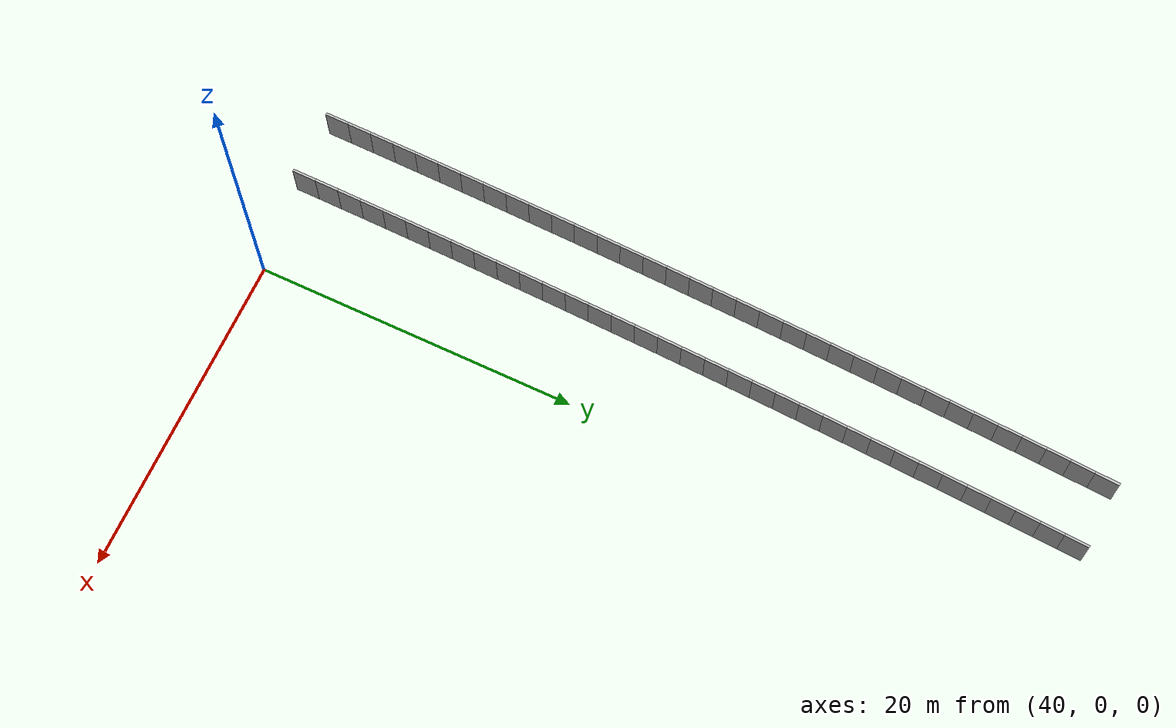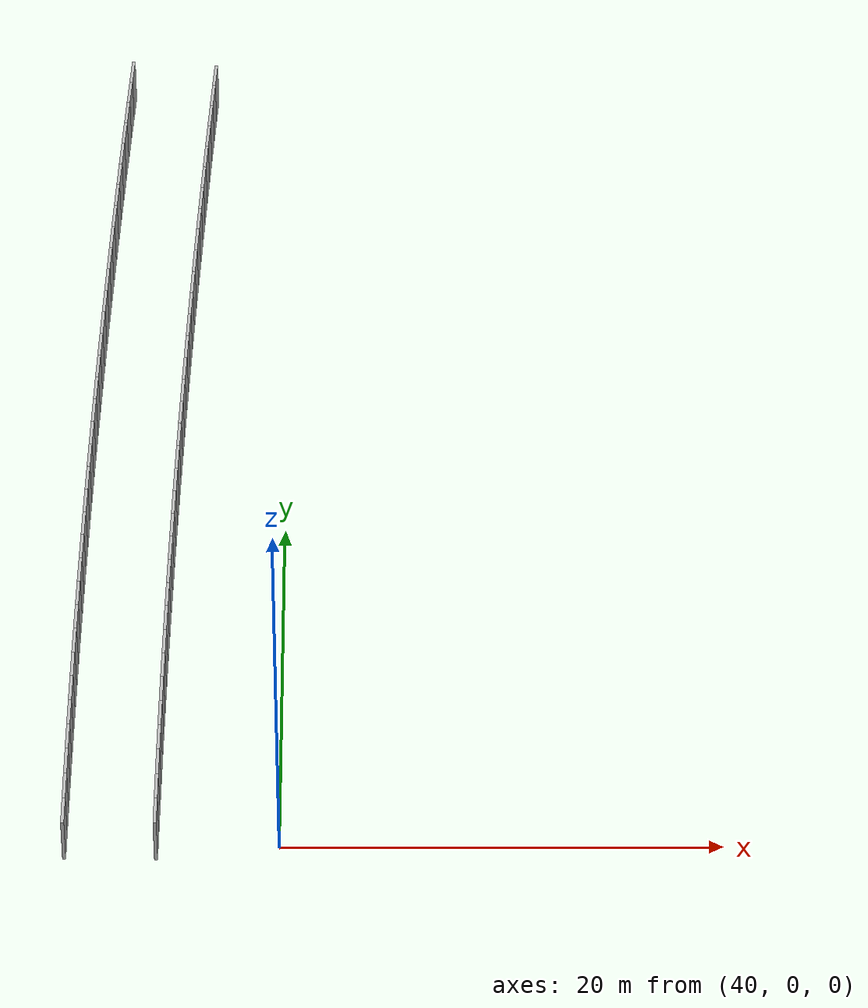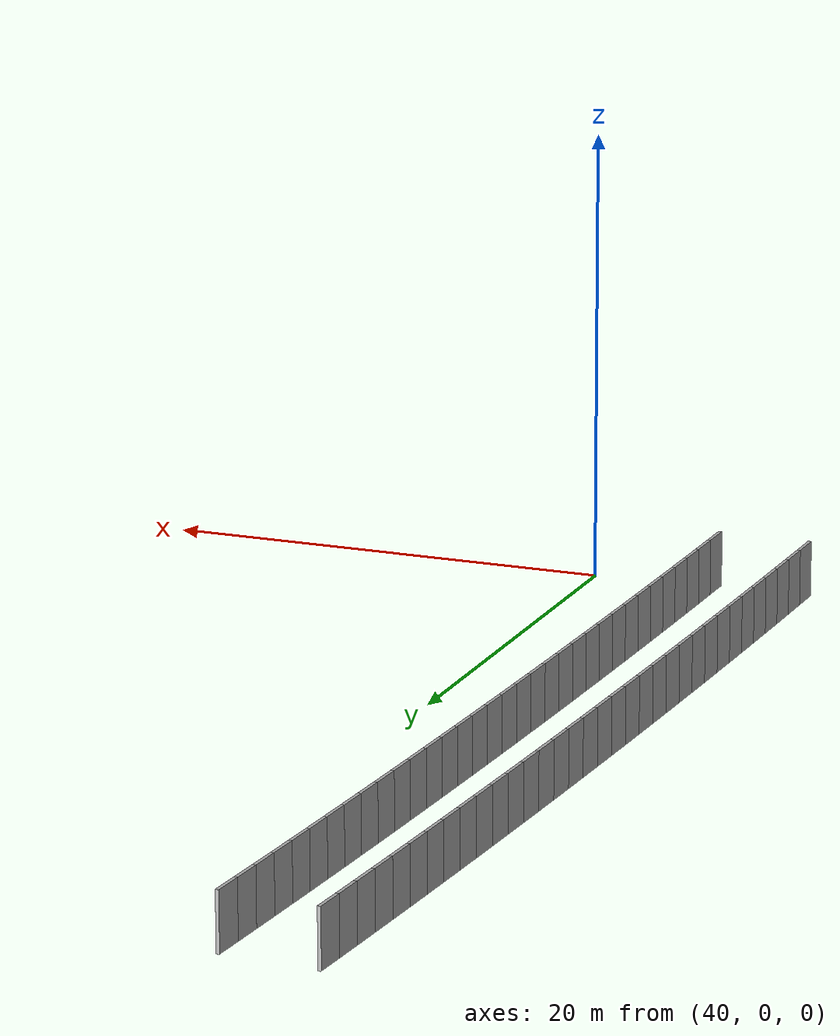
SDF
<?xml version="1.0" ?>
<sdf version="1.6">
  <model name="sps_0226">
    <pose frame="">0 0 0 0 -0 0</pose>
    <static>1</static>
    <self_collide>0</self_collide>
    <allow_auto_disable>0</allow_auto_disable>
    <link name="Wall5170">
      <kinematic>0</kinematic>
      <gravity>1</gravity>
      <self_collide>0</self_collide>
      <collision name="collision">
        <geometry>
          <box>
            <size>1.49648 0.15 2.5</size>
          </box>
        </geometry>
        <pose frame="">0 0 0 0 -0 0</pose>
      </collision>
      <visual name="visual">
        <geometry>
          <box>
            <size>1.49648 0.15 2.5</size>
          </box>
        </geometry>
        <pose frame="">0 0 0 0 -0 0</pose>
        <cast_shadows>1</cast_shadows>
        <transparency>0.0</transparency>
      </visual>
      <pose frame="">36.1128 49.4026 1.25 0 0 -1.63099</pose>
    </link>
    <link name="Wall5171">
      <kinematic>0</kinematic>
      <gravity>1</gravity>
      <self_collide>0</self_collide>
      <collision name="collision">
        <geometry>
          <box>
            <size>1.49657 0.15 2.5</size>
          </box>
        </geometry>
        <pose frame="">0 0 0 0 -0 0</pose>
      </collision>
      <visual name="visual">
        <geometry>
          <box>
            <size>1.49657 0.15 2.5</size>
          </box>
        </geometry>
        <pose frame="">0 0 0 0 -0 0</pose>
        <cast_shadows>1</cast_shadows>
        <transparency>0.0</transparency>
      </visual>
      <pose frame="">36.0241 47.9087 1.25 0 0 -1.62923</pose>
    </link>
    <link name="Wall5172">
      <kinematic>0</kinematic>
      <gravity>1</gravity>
      <self_collide>0</self_collide>
      <collision name="collision">
        <geometry>
          <box>
            <size>1.49643 0.15 2.5</size>
          </box>
        </geometry>
        <pose frame="">0 0 0 0 -0 0</pose>
      </collision>
      <visual name="visual">
        <geometry>
          <box>
            <size>1.49643 0.15 2.5</size>
          </box>
        </geometry>
        <pose frame="">0 0 0 0 -0 0</pose>
        <cast_shadows>1</cast_shadows>
        <transparency>0.0</transparency>
      </visual>
      <pose frame="">35.9379 46.4147 1.25 0 0 -1.6276</pose>
    </link>
    <link name="Wall5173">
      <kinematic>0</kinematic>
      <gravity>1</gravity>
      <self_collide>0</self_collide>
      <collision name="collision">
        <geometry>
          <box>
            <size>1.4965 0.15 2.5</size>
          </box>
        </geometry>
        <pose frame="">0 0 0 0 -0 0</pose>
      </collision>
      <visual name="visual">
        <geometry>
          <box>
            <size>1.4965 0.15 2.5</size>
          </box>
        </geometry>
        <pose frame="">0 0 0 0 -0 0</pose>
        <cast_shadows>1</cast_shadows>
        <transparency>0.0</transparency>
      </visual>
      <pose frame="">35.8541 44.9206 1.25 0 0 -1.62617</pose>
    </link>
    <link name="Wall5174">
      <kinematic>0</kinematic>
      <gravity>1</gravity>
      <self_collide>0</self_collide>
      <collision name="collision">
        <geometry>
          <box>
            <size>1.49672 0.15 2.5</size>
          </box>
        </geometry>
        <pose frame="">0 0 0 0 -0 0</pose>
      </collision>
      <visual name="visual">
        <geometry>
          <box>
            <size>1.49672 0.15 2.5</size>
          </box>
        </geometry>
        <pose frame="">0 0 0 0 -0 0</pose>
        <cast_shadows>1</cast_shadows>
        <transparency>0.0</transparency>
      </visual>
      <pose frame="">35.7725 43.4262 1.25 0 0 -1.62441</pose>
    </link>
    <link name="Wall5175">
      <kinematic>0</kinematic>
      <gravity>1</gravity>
      <self_collide>0</self_collide>
      <collision name="collision">
        <geometry>
          <box>
            <size>1.49648 0.15 2.5</size>
          </box>
        </geometry>
        <pose frame="">0 0 0 0 -0 0</pose>
      </collision>
      <visual name="visual">
        <geometry>
          <box>
            <size>1.49648 0.15 2.5</size>
          </box>
        </geometry>
        <pose frame="">0 0 0 0 -0 0</pose>
        <cast_shadows>1</cast_shadows>
        <transparency>0.0</transparency>
      </visual>
      <pose frame="">35.6934 41.9317 1.25 0 0 -1.62294</pose>
    </link>
    <link name="Wall5176">
      <kinematic>0</kinematic>
      <gravity>1</gravity>
      <self_collide>0</self_collide>
      <collision name="collision">
        <geometry>
          <box>
            <size>1.49648 0.15 2.5</size>
          </box>
        </geometry>
        <pose frame="">0 0 0 0 -0 0</pose>
      </collision>
      <visual name="visual">
        <geometry>
          <box>
            <size>1.49648 0.15 2.5</size>
          </box>
        </geometry>
        <pose frame="">0 0 0 0 -0 0</pose>
        <cast_shadows>1</cast_shadows>
        <transparency>0.0</transparency>
      </visual>
      <pose frame="">35.6167 40.4372 1.25 0 0 -1.62131</pose>
    </link>
    <link name="Wall5177">
      <kinematic>0</kinematic>
      <gravity>1</gravity>
      <self_collide>0</self_collide>
      <collision name="collision">
        <geometry>
          <box>
            <size>1.49642 0.15 2.5</size>
          </box>
        </geometry>
        <pose frame="">0 0 0 0 -0 0</pose>
      </collision>
      <visual name="visual">
        <geometry>
          <box>
            <size>1.49642 0.15 2.5</size>
          </box>
        </geometry>
        <pose frame="">0 0 0 0 -0 0</pose>
        <cast_shadows>1</cast_shadows>
        <transparency>0.0</transparency>
      </visual>
      <pose frame="">35.5423 38.9426 1.25 0 0 -1.61976</pose>
    </link>
    <link name="Wall5178">
      <kinematic>0</kinematic>
      <gravity>1</gravity>
      <self_collide>0</self_collide>
      <collision name="collision">
        <geometry>
          <box>
            <size>1.49644 0.15 2.5</size>
          </box>
        </geometry>
        <pose frame="">0 0 0 0 -0 0</pose>
      </collision>
      <visual name="visual">
        <geometry>
          <box>
            <size>1.49644 0.15 2.5</size>
          </box>
        </geometry>
        <pose frame="">0 0 0 0 -0 0</pose>
        <cast_shadows>1</cast_shadows>
        <transparency>0.0</transparency>
      </visual>
      <pose frame="">35.4701 37.4479 1.25 0 0 -1.61825</pose>
    </link>
    <link name="Wall5179">
      <kinematic>0</kinematic>
      <gravity>1</gravity>
      <self_collide>0</self_collide>
      <collision name="collision">
        <geometry>
          <box>
            <size>1.49656 0.15 2.5</size>
          </box>
        </geometry>
        <pose frame="">0 0 0 0 -0 0</pose>
      </collision>
      <visual name="visual">
        <geometry>
          <box>
            <size>1.49656 0.15 2.5</size>
          </box>
        </geometry>
        <pose frame="">0 0 0 0 -0 0</pose>
        <cast_shadows>1</cast_shadows>
        <transparency>0.0</transparency>
      </visual>
      <pose frame="">35.4004 35.953 1.25 0 0 -1.61653</pose>
    </link>
    <link name="Wall5180">
      <kinematic>0</kinematic>
      <gravity>1</gravity>
      <self_collide>0</self_collide>
      <collision name="collision">
        <geometry>
          <box>
            <size>1.4967 0.15 2.5</size>
          </box>
        </geometry>
        <pose frame="">0 0 0 0 -0 0</pose>
      </collision>
      <visual name="visual">
        <geometry>
          <box>
            <size>1.4967 0.15 2.5</size>
          </box>
        </geometry>
        <pose frame="">0 0 0 0 -0 0</pose>
        <cast_shadows>1</cast_shadows>
        <transparency>0.0</transparency>
      </visual>
      <pose frame="">35.3332 34.4579 1.25 0 0 -1.61502</pose>
    </link>
    <link name="Wall5181">
      <kinematic>0</kinematic>
      <gravity>1</gravity>
      <self_collide>0</self_collide>
      <collision name="collision">
        <geometry>
          <box>
            <size>1.49636 0.15 2.5</size>
          </box>
        </geometry>
        <pose frame="">0 0 0 0 -0 0</pose>
      </collision>
      <visual name="visual">
        <geometry>
          <box>
            <size>1.49636 0.15 2.5</size>
          </box>
        </geometry>
        <pose frame="">0 0 0 0 -0 0</pose>
        <cast_shadows>1</cast_shadows>
        <transparency>0.0</transparency>
      </visual>
      <pose frame="">35.2681 32.9628 1.25 0 0 -1.61347</pose>
    </link>
    <link name="Wall5182">
      <kinematic>0</kinematic>
      <gravity>1</gravity>
      <self_collide>0</self_collide>
      <collision name="collision">
        <geometry>
          <box>
            <size>1.49668 0.15 2.5</size>
          </box>
        </geometry>
        <pose frame="">0 0 0 0 -0 0</pose>
      </collision>
      <visual name="visual">
        <geometry>
          <box>
            <size>1.49668 0.15 2.5</size>
          </box>
        </geometry>
        <pose frame="">0 0 0 0 -0 0</pose>
        <cast_shadows>1</cast_shadows>
        <transparency>0.0</transparency>
      </visual>
      <pose frame="">35.2055 31.4676 1.25 0 0 -1.61183</pose>
    </link>
    <link name="Wall5183">
      <kinematic>0</kinematic>
      <gravity>1</gravity>
      <self_collide>0</self_collide>
      <collision name="collision">
        <geometry>
          <box>
            <size>1.49633 0.15 2.5</size>
          </box>
        </geometry>
        <pose frame="">0 0 0 0 -0 0</pose>
      </collision>
      <visual name="visual">
        <geometry>
          <box>
            <size>1.49633 0.15 2.5</size>
          </box>
        </geometry>
        <pose frame="">0 0 0 0 -0 0</pose>
        <cast_shadows>1</cast_shadows>
        <transparency>0.0</transparency>
      </visual>
      <pose frame="">35.1454 29.9723 1.25 0 0 -1.61009</pose>
    </link>
    <link name="Wall5184">
      <kinematic>0</kinematic>
      <gravity>1</gravity>
      <self_collide>0</self_collide>
      <collision name="collision">
        <geometry>
          <box>
            <size>1.49668 0.15 2.5</size>
          </box>
        </geometry>
        <pose frame="">0 0 0 0 -0 0</pose>
      </collision>
      <visual name="visual">
        <geometry>
          <box>
            <size>1.49668 0.15 2.5</size>
          </box>
        </geometry>
        <pose frame="">0 0 0 0 -0 0</pose>
        <cast_shadows>1</cast_shadows>
        <transparency>0.0</transparency>
      </visual>
      <pose frame="">35.0876 28.4769 1.25 0 0 -1.60877</pose>
    </link>
    <link name="Wall5185">
      <kinematic>0</kinematic>
      <gravity>1</gravity>
      <self_collide>0</self_collide>
      <collision name="collision">
        <geometry>
          <box>
            <size>1.49659 0.15 2.5</size>
          </box>
        </geometry>
        <pose frame="">0 0 0 0 -0 0</pose>
      </collision>
      <visual name="visual">
        <geometry>
          <box>
            <size>1.49659 0.15 2.5</size>
          </box>
        </geometry>
        <pose frame="">0 0 0 0 -0 0</pose>
        <cast_shadows>1</cast_shadows>
        <transparency>0.0</transparency>
      </visual>
      <pose frame="">35.0321 26.9813 1.25 0 0 -1.60702</pose>
    </link>
    <link name="Wall5186">
      <kinematic>0</kinematic>
      <gravity>1</gravity>
      <self_collide>0</self_collide>
      <collision name="collision">
        <geometry>
          <box>
            <size>1.4965 0.15 2.5</size>
          </box>
        </geometry>
        <pose frame="">0 0 0 0 -0 0</pose>
      </collision>
      <visual name="visual">
        <geometry>
          <box>
            <size>1.4965 0.15 2.5</size>
          </box>
        </geometry>
        <pose frame="">0 0 0 0 -0 0</pose>
        <cast_shadows>1</cast_shadows>
        <transparency>0.0</transparency>
      </visual>
      <pose frame="">34.9791 25.4857 1.25 0 0 -1.60539</pose>
    </link>
    <link name="Wall5187">
      <kinematic>0</kinematic>
      <gravity>1</gravity>
      <self_collide>0</self_collide>
      <collision name="collision">
        <geometry>
          <box>
            <size>1.49661 0.15 2.5</size>
          </box>
        </geometry>
        <pose frame="">0 0 0 0 -0 0</pose>
      </collision>
      <visual name="visual">
        <geometry>
          <box>
            <size>1.49661 0.15 2.5</size>
          </box>
        </geometry>
        <pose frame="">0 0 0 0 -0 0</pose>
        <cast_shadows>1</cast_shadows>
        <transparency>0.0</transparency>
      </visual>
      <pose frame="">34.9285 23.99 1.25 0 0 -1.60396</pose>
    </link>
    <link name="Wall5188">
      <kinematic>0</kinematic>
      <gravity>1</gravity>
      <self_collide>0</self_collide>
      <collision name="collision">
        <geometry>
          <box>
            <size>1.49635 0.15 2.5</size>
          </box>
        </geometry>
        <pose frame="">0 0 0 0 -0 0</pose>
      </collision>
      <visual name="visual">
        <geometry>
          <box>
            <size>1.49635 0.15 2.5</size>
          </box>
        </geometry>
        <pose frame="">0 0 0 0 -0 0</pose>
        <cast_shadows>1</cast_shadows>
        <transparency>0.0</transparency>
      </visual>
      <pose frame="">34.8801 22.4943 1.25 0 0 -1.60233</pose>
    </link>
    <link name="Wall5189">
      <kinematic>0</kinematic>
      <gravity>1</gravity>
      <self_collide>0</self_collide>
      <collision name="collision">
        <geometry>
          <box>
            <size>1.49646 0.15 2.5</size>
          </box>
        </geometry>
        <pose frame="">0 0 0 0 -0 0</pose>
      </collision>
      <visual name="visual">
        <geometry>
          <box>
            <size>1.49646 0.15 2.5</size>
          </box>
        </geometry>
        <pose frame="">0 0 0 0 -0 0</pose>
        <cast_shadows>1</cast_shadows>
        <transparency>0.0</transparency>
      </visual>
      <pose frame="">34.8341 20.9986 1.25 0 0 -1.60074</pose>
    </link>
    <link name="Wall5190">
      <kinematic>0</kinematic>
      <gravity>1</gravity>
      <self_collide>0</self_collide>
      <collision name="collision">
        <geometry>
          <box>
            <size>1.49639 0.15 2.5</size>
          </box>
        </geometry>
        <pose frame="">0 0 0 0 -0 0</pose>
      </collision>
      <visual name="visual">
        <geometry>
          <box>
            <size>1.49639 0.15 2.5</size>
          </box>
        </geometry>
        <pose frame="">0 0 0 0 -0 0</pose>
        <cast_shadows>1</cast_shadows>
        <transparency>0.0</transparency>
      </visual>
      <pose frame="">34.7905 19.5028 1.25 0 0 -1.59915</pose>
    </link>
    <link name="Wall5191">
      <kinematic>0</kinematic>
      <gravity>1</gravity>
      <self_collide>0</self_collide>
      <collision name="collision">
        <geometry>
          <box>
            <size>1.49657 0.15 2.5</size>
          </box>
        </geometry>
        <pose frame="">0 0 0 0 -0 0</pose>
      </collision>
      <visual name="visual">
        <geometry>
          <box>
            <size>1.49657 0.15 2.5</size>
          </box>
        </geometry>
        <pose frame="">0 0 0 0 -0 0</pose>
        <cast_shadows>1</cast_shadows>
        <transparency>0.0</transparency>
      </visual>
      <pose frame="">34.7493 18.0069 1.25 0 0 -1.59751</pose>
    </link>
    <link name="Wall5192">
      <kinematic>0</kinematic>
      <gravity>1</gravity>
      <self_collide>0</self_collide>
      <collision name="collision">
        <geometry>
          <box>
            <size>1.49663 0.15 2.5</size>
          </box>
        </geometry>
        <pose frame="">0 0 0 0 -0 0</pose>
      </collision>
      <visual name="visual">
        <geometry>
          <box>
            <size>1.49663 0.15 2.5</size>
          </box>
        </geometry>
        <pose frame="">0 0 0 0 -0 0</pose>
        <cast_shadows>1</cast_shadows>
        <transparency>0.0</transparency>
      </visual>
      <pose frame="">34.7105 16.5108 1.25 0 0 -1.59592</pose>
    </link>
    <link name="Wall5193">
      <kinematic>0</kinematic>
      <gravity>1</gravity>
      <self_collide>0</self_collide>
      <collision name="collision">
        <geometry>
          <box>
            <size>1.49645 0.15 2.5</size>
          </box>
        </geometry>
        <pose frame="">0 0 0 0 -0 0</pose>
      </collision>
      <visual name="visual">
        <geometry>
          <box>
            <size>1.49645 0.15 2.5</size>
          </box>
        </geometry>
        <pose frame="">0 0 0 0 -0 0</pose>
        <cast_shadows>1</cast_shadows>
        <transparency>0.0</transparency>
      </visual>
      <pose frame="">34.674 15.0147 1.25 0 0 -1.59445</pose>
    </link>
    <link name="Wall5194">
      <kinematic>0</kinematic>
      <gravity>1</gravity>
      <self_collide>0</self_collide>
      <collision name="collision">
        <geometry>
          <box>
            <size>1.49652 0.15 2.5</size>
          </box>
        </geometry>
        <pose frame="">0 0 0 0 -0 0</pose>
      </collision>
      <visual name="visual">
        <geometry>
          <box>
            <size>1.49652 0.15 2.5</size>
          </box>
        </geometry>
        <pose frame="">0 0 0 0 -0 0</pose>
        <cast_shadows>1</cast_shadows>
        <transparency>0.0</transparency>
      </visual>
      <pose frame="">34.6399 13.5186 1.25 0 0 -1.59274</pose>
    </link>
    <link name="Wall5195">
      <kinematic>0</kinematic>
      <gravity>1</gravity>
      <self_collide>0</self_collide>
      <collision name="collision">
        <geometry>
          <box>
            <size>1.49671 0.15 2.5</size>
          </box>
        </geometry>
        <pose frame="">0 0 0 0 -0 0</pose>
      </collision>
      <visual name="visual">
        <geometry>
          <box>
            <size>1.49671 0.15 2.5</size>
          </box>
        </geometry>
        <pose frame="">0 0 0 0 -0 0</pose>
        <cast_shadows>1</cast_shadows>
        <transparency>0.0</transparency>
      </visual>
      <pose frame="">34.6081 12.0223 1.25 0 0 -1.59123</pose>
    </link>
    <link name="Wall5196">
      <kinematic>0</kinematic>
      <gravity>1</gravity>
      <self_collide>0</self_collide>
      <collision name="collision">
        <geometry>
          <box>
            <size>1.49648 0.15 2.5</size>
          </box>
        </geometry>
        <pose frame="">0 0 0 0 -0 0</pose>
      </collision>
      <visual name="visual">
        <geometry>
          <box>
            <size>1.49648 0.15 2.5</size>
          </box>
        </geometry>
        <pose frame="">0 0 0 0 -0 0</pose>
        <cast_shadows>1</cast_shadows>
        <transparency>0.0</transparency>
      </visual>
      <pose frame="">34.5788 10.526 1.25 0 0 -1.58964</pose>
    </link>
    <link name="Wall5197">
      <kinematic>0</kinematic>
      <gravity>1</gravity>
      <self_collide>0</self_collide>
      <collision name="collision">
        <geometry>
          <box>
            <size>1.49644 0.15 2.5</size>
          </box>
        </geometry>
        <pose frame="">0 0 0 0 -0 0</pose>
      </collision>
      <visual name="visual">
        <geometry>
          <box>
            <size>1.49644 0.15 2.5</size>
          </box>
        </geometry>
        <pose frame="">0 0 0 0 -0 0</pose>
        <cast_shadows>1</cast_shadows>
        <transparency>0.0</transparency>
      </visual>
      <pose frame="">34.5517 9.0298 1.25 0 0 -1.58805</pose>
    </link>
    <link name="Wall5198">
      <kinematic>0</kinematic>
      <gravity>1</gravity>
      <self_collide>0</self_collide>
      <collision name="collision">
        <geometry>
          <box>
            <size>1.49658 0.15 2.5</size>
          </box>
        </geometry>
        <pose frame="">0 0 0 0 -0 0</pose>
      </collision>
      <visual name="visual">
        <geometry>
          <box>
            <size>1.49658 0.15 2.5</size>
          </box>
        </geometry>
        <pose frame="">0 0 0 0 -0 0</pose>
        <cast_shadows>1</cast_shadows>
        <transparency>0.0</transparency>
      </visual>
      <pose frame="">34.5271 7.53349 1.25 0 0 -1.58654</pose>
    </link>
    <link name="Wall5199">
      <kinematic>0</kinematic>
      <gravity>1</gravity>
      <self_collide>0</self_collide>
      <collision name="collision">
        <geometry>
          <box>
            <size>1.49655 0.15 2.5</size>
          </box>
        </geometry>
        <pose frame="">0 0 0 0 -0 0</pose>
      </collision>
      <visual name="visual">
        <geometry>
          <box>
            <size>1.49655 0.15 2.5</size>
          </box>
        </geometry>
        <pose frame="">0 0 0 0 -0 0</pose>
        <cast_shadows>1</cast_shadows>
        <transparency>0.0</transparency>
      </visual>
      <pose frame="">34.5048 6.03709 1.25 0 0 -1.58483</pose>
    </link>
    <link name="Wall5200">
      <kinematic>0</kinematic>
      <gravity>1</gravity>
      <self_collide>0</self_collide>
      <collision name="collision">
        <geometry>
          <box>
            <size>1.49652 0.15 2.5</size>
          </box>
        </geometry>
        <pose frame="">0 0 0 0 -0 0</pose>
      </collision>
      <visual name="visual">
        <geometry>
          <box>
            <size>1.49652 0.15 2.5</size>
          </box>
        </geometry>
        <pose frame="">0 0 0 0 -0 0</pose>
        <cast_shadows>1</cast_shadows>
        <transparency>0.0</transparency>
      </visual>
      <pose frame="">34.4849 4.54069 1.25 0 0 -1.58336</pose>
    </link>
    <link name="Wall5201">
      <kinematic>0</kinematic>
      <gravity>1</gravity>
      <self_collide>0</self_collide>
      <collision name="collision">
        <geometry>
          <box>
            <size>1.49649 0.15 2.5</size>
          </box>
        </geometry>
        <pose frame="">0 0 0 0 -0 0</pose>
      </collision>
      <visual name="visual">
        <geometry>
          <box>
            <size>1.49649 0.15 2.5</size>
          </box>
        </geometry>
        <pose frame="">0 0 0 0 -0 0</pose>
        <cast_shadows>1</cast_shadows>
        <transparency>0.0</transparency>
      </visual>
      <pose frame="">34.4673 3.0443 1.25 0 0 -1.58177</pose>
    </link>
    <link name="Wall5202">
      <kinematic>0</kinematic>
      <gravity>1</gravity>
      <self_collide>0</self_collide>
      <collision name="collision">
        <geometry>
          <box>
            <size>1.49646 0.15 2.5</size>
          </box>
        </geometry>
        <pose frame="">0 0 0 0 -0 0</pose>
      </collision>
      <visual name="visual">
        <geometry>
          <box>
            <size>1.49646 0.15 2.5</size>
          </box>
        </geometry>
        <pose frame="">0 0 0 0 -0 0</pose>
        <cast_shadows>1</cast_shadows>
        <transparency>0.0</transparency>
      </visual>
      <pose frame="">34.452 1.5479 1.25 0 0 -1.58018</pose>
    </link>
    <link name="Wall5203">
      <kinematic>0</kinematic>
      <gravity>1</gravity>
      <self_collide>0</self_collide>
      <collision name="collision">
        <geometry>
          <box>
            <size>1.49663 0.15 2.5</size>
          </box>
        </geometry>
        <pose frame="">0 0 0 0 -0 0</pose>
      </collision>
      <visual name="visual">
        <geometry>
          <box>
            <size>1.49663 0.15 2.5</size>
          </box>
        </geometry>
        <pose frame="">0 0 0 0 -0 0</pose>
        <cast_shadows>1</cast_shadows>
        <transparency>0.0</transparency>
      </visual>
      <pose frame="">34.4392 0.0514058 1.25 0 0 -1.57854</pose>
    </link>
    <link name="Wall6966">
      <kinematic>0</kinematic>
      <gravity>1</gravity>
      <self_collide>0</self_collide>
      <collision name="collision">
        <geometry>
          <box>
            <size>1.50289 0.15 2.5</size>
          </box>
        </geometry>
        <pose frame="">0 0 0 0 -0 0</pose>
      </collision>
      <visual name="visual">
        <geometry>
          <box>
            <size>1.50289 0.15 2.5</size>
          </box>
        </geometry>
        <pose frame="">0 0 0 0 -0 0</pose>
        <cast_shadows>1</cast_shadows>
        <transparency>0.0</transparency>
      </visual>
      <pose frame="">31.981 49.651 1.25 0 0 -1.63086</pose>
    </link>
    <link name="Wall6967">
      <kinematic>0</kinematic>
      <gravity>1</gravity>
      <self_collide>0</self_collide>
      <collision name="collision">
        <geometry>
          <box>
            <size>1.50318 0.15 2.5</size>
          </box>
        </geometry>
        <pose frame="">0 0 0 0 -0 0</pose>
      </collision>
      <visual name="visual">
        <geometry>
          <box>
            <size>1.50318 0.15 2.5</size>
          </box>
        </geometry>
        <pose frame="">0 0 0 0 -0 0</pose>
        <cast_shadows>1</cast_shadows>
        <transparency>0.0</transparency>
      </visual>
      <pose frame="">31.892 48.1506 1.25 0 0 -1.62926</pose>
    </link>
    <link name="Wall6968">
      <kinematic>0</kinematic>
      <gravity>1</gravity>
      <self_collide>0</self_collide>
      <collision name="collision">
        <geometry>
          <box>
            <size>1.50322 0.15 2.5</size>
          </box>
        </geometry>
        <pose frame="">0 0 0 0 -0 0</pose>
      </collision>
      <visual name="visual">
        <geometry>
          <box>
            <size>1.50322 0.15 2.5</size>
          </box>
        </geometry>
        <pose frame="">0 0 0 0 -0 0</pose>
        <cast_shadows>1</cast_shadows>
        <transparency>0.0</transparency>
      </visual>
      <pose frame="">31.8054 46.6499 1.25 0 0 -1.62763</pose>
    </link>
    <link name="Wall6969">
      <kinematic>0</kinematic>
      <gravity>1</gravity>
      <self_collide>0</self_collide>
      <collision name="collision">
        <geometry>
          <box>
            <size>1.5031 0.15 2.5</size>
          </box>
        </geometry>
        <pose frame="">0 0 0 0 -0 0</pose>
      </collision>
      <visual name="visual">
        <geometry>
          <box>
            <size>1.5031 0.15 2.5</size>
          </box>
        </geometry>
        <pose frame="">0 0 0 0 -0 0</pose>
        <cast_shadows>1</cast_shadows>
        <transparency>0.0</transparency>
      </visual>
      <pose frame="">31.7211 45.1491 1.25 0 0 -1.62617</pose>
    </link>
    <link name="Wall6970">
      <kinematic>0</kinematic>
      <gravity>1</gravity>
      <self_collide>0</self_collide>
      <collision name="collision">
        <geometry>
          <box>
            <size>1.50296 0.15 2.5</size>
          </box>
        </geometry>
        <pose frame="">0 0 0 0 -0 0</pose>
      </collision>
      <visual name="visual">
        <geometry>
          <box>
            <size>1.50296 0.15 2.5</size>
          </box>
        </geometry>
        <pose frame="">0 0 0 0 -0 0</pose>
        <cast_shadows>1</cast_shadows>
        <transparency>0.0</transparency>
      </visual>
      <pose frame="">31.6392 43.6483 1.25 0 0 -1.62447</pose>
    </link>
    <link name="Wall6971">
      <kinematic>0</kinematic>
      <gravity>1</gravity>
      <self_collide>0</self_collide>
      <collision name="collision">
        <geometry>
          <box>
            <size>1.50326 0.15 2.5</size>
          </box>
        </geometry>
        <pose frame="">0 0 0 0 -0 0</pose>
      </collision>
      <visual name="visual">
        <geometry>
          <box>
            <size>1.50326 0.15 2.5</size>
          </box>
        </geometry>
        <pose frame="">0 0 0 0 -0 0</pose>
        <cast_shadows>1</cast_shadows>
        <transparency>0.0</transparency>
      </visual>
      <pose frame="">31.5597 42.1473 1.25 0 0 -1.62283</pose>
    </link>
    <link name="Wall6972">
      <kinematic>0</kinematic>
      <gravity>1</gravity>
      <self_collide>0</self_collide>
      <collision name="collision">
        <geometry>
          <box>
            <size>1.5029 0.15 2.5</size>
          </box>
        </geometry>
        <pose frame="">0 0 0 0 -0 0</pose>
      </collision>
      <visual name="visual">
        <geometry>
          <box>
            <size>1.5029 0.15 2.5</size>
          </box>
        </geometry>
        <pose frame="">0 0 0 0 -0 0</pose>
        <cast_shadows>1</cast_shadows>
        <transparency>0.0</transparency>
      </visual>
      <pose frame="">31.4827 40.6462 1.25 0 0 -1.62138</pose>
    </link>
    <link name="Wall6973">
      <kinematic>0</kinematic>
      <gravity>1</gravity>
      <self_collide>0</self_collide>
      <collision name="collision">
        <geometry>
          <box>
            <size>1.50302 0.15 2.5</size>
          </box>
        </geometry>
        <pose frame="">0 0 0 0 -0 0</pose>
      </collision>
      <visual name="visual">
        <geometry>
          <box>
            <size>1.50302 0.15 2.5</size>
          </box>
        </geometry>
        <pose frame="">0 0 0 0 -0 0</pose>
        <cast_shadows>1</cast_shadows>
        <transparency>0.0</transparency>
      </visual>
      <pose frame="">31.408 39.1451 1.25 0 0 -1.61967</pose>
    </link>
    <link name="Wall6974">
      <kinematic>0</kinematic>
      <gravity>1</gravity>
      <self_collide>0</self_collide>
      <collision name="collision">
        <geometry>
          <box>
            <size>1.50309 0.15 2.5</size>
          </box>
        </geometry>
        <pose frame="">0 0 0 0 -0 0</pose>
      </collision>
      <visual name="visual">
        <geometry>
          <box>
            <size>1.50309 0.15 2.5</size>
          </box>
        </geometry>
        <pose frame="">0 0 0 0 -0 0</pose>
        <cast_shadows>1</cast_shadows>
        <transparency>0.0</transparency>
      </visual>
      <pose frame="">31.3357 37.6438 1.25 0 0 -1.61816</pose>
    </link>
    <link name="Wall6975">
      <kinematic>0</kinematic>
      <gravity>1</gravity>
      <self_collide>0</self_collide>
      <collision name="collision">
        <geometry>
          <box>
            <size>1.50316 0.15 2.5</size>
          </box>
        </geometry>
        <pose frame="">0 0 0 0 -0 0</pose>
      </collision>
      <visual name="visual">
        <geometry>
          <box>
            <size>1.50316 0.15 2.5</size>
          </box>
        </geometry>
        <pose frame="">0 0 0 0 -0 0</pose>
        <cast_shadows>1</cast_shadows>
        <transparency>0.0</transparency>
      </visual>
      <pose frame="">31.2657 36.1423 1.25 0 0 -1.61657</pose>
    </link>
    <link name="Wall6976">
      <kinematic>0</kinematic>
      <gravity>1</gravity>
      <self_collide>0</self_collide>
      <collision name="collision">
        <geometry>
          <box>
            <size>1.50305 0.15 2.5</size>
          </box>
        </geometry>
        <pose frame="">0 0 0 0 -0 0</pose>
      </collision>
      <visual name="visual">
        <geometry>
          <box>
            <size>1.50305 0.15 2.5</size>
          </box>
        </geometry>
        <pose frame="">0 0 0 0 -0 0</pose>
        <cast_shadows>1</cast_shadows>
        <transparency>0.0</transparency>
      </visual>
      <pose frame="">31.1981 34.6407 1.25 0 0 -1.61499</pose>
    </link>
    <link name="Wall6977">
      <kinematic>0</kinematic>
      <gravity>1</gravity>
      <self_collide>0</self_collide>
      <collision name="collision">
        <geometry>
          <box>
            <size>1.5032 0.15 2.5</size>
          </box>
        </geometry>
        <pose frame="">0 0 0 0 -0 0</pose>
      </collision>
      <visual name="visual">
        <geometry>
          <box>
            <size>1.5032 0.15 2.5</size>
          </box>
        </geometry>
        <pose frame="">0 0 0 0 -0 0</pose>
        <cast_shadows>1</cast_shadows>
        <transparency>0.0</transparency>
      </visual>
      <pose frame="">31.1329 33.139 1.25 0 0 -1.6134</pose>
    </link>
    <link name="Wall6978">
      <kinematic>0</kinematic>
      <gravity>1</gravity>
      <self_collide>0</self_collide>
      <collision name="collision">
        <geometry>
          <box>
            <size>1.50304 0.15 2.5</size>
          </box>
        </geometry>
        <pose frame="">0 0 0 0 -0 0</pose>
      </collision>
      <visual name="visual">
        <geometry>
          <box>
            <size>1.50304 0.15 2.5</size>
          </box>
        </geometry>
        <pose frame="">0 0 0 0 -0 0</pose>
        <cast_shadows>1</cast_shadows>
        <transparency>0.0</transparency>
      </visual>
      <pose frame="">31.07 31.6372 1.25 0 0 -1.6119</pose>
    </link>
    <link name="Wall6979">
      <kinematic>0</kinematic>
      <gravity>1</gravity>
      <self_collide>0</self_collide>
      <collision name="collision">
        <geometry>
          <box>
            <size>1.503 0.15 2.5</size>
          </box>
        </geometry>
        <pose frame="">0 0 0 0 -0 0</pose>
      </collision>
      <visual name="visual">
        <geometry>
          <box>
            <size>1.503 0.15 2.5</size>
          </box>
        </geometry>
        <pose frame="">0 0 0 0 -0 0</pose>
        <cast_shadows>1</cast_shadows>
        <transparency>0.0</transparency>
      </visual>
      <pose frame="">31.0095 30.1354 1.25 0 0 -1.6102</pose>
    </link>
    <link name="Wall6980">
      <kinematic>0</kinematic>
      <gravity>1</gravity>
      <self_collide>0</self_collide>
      <collision name="collision">
        <geometry>
          <box>
            <size>1.50328 0.15 2.5</size>
          </box>
        </geometry>
        <pose frame="">0 0 0 0 -0 0</pose>
      </collision>
      <visual name="visual">
        <geometry>
          <box>
            <size>1.50328 0.15 2.5</size>
          </box>
        </geometry>
        <pose frame="">0 0 0 0 -0 0</pose>
        <cast_shadows>1</cast_shadows>
        <transparency>0.0</transparency>
      </visual>
      <pose frame="">30.9514 28.6334 1.25 0 0 -1.60873</pose>
    </link>
    <link name="Wall6981">
      <kinematic>0</kinematic>
      <gravity>1</gravity>
      <self_collide>0</self_collide>
      <collision name="collision">
        <geometry>
          <box>
            <size>1.503 0.15 2.5</size>
          </box>
        </geometry>
        <pose frame="">0 0 0 0 -0 0</pose>
      </collision>
      <visual name="visual">
        <geometry>
          <box>
            <size>1.503 0.15 2.5</size>
          </box>
        </geometry>
        <pose frame="">0 0 0 0 -0 0</pose>
        <cast_shadows>1</cast_shadows>
        <transparency>0.0</transparency>
      </visual>
      <pose frame="">30.8957 27.1313 1.25 0 0 -1.60703</pose>
    </link>
    <link name="Wall6982">
      <kinematic>0</kinematic>
      <gravity>1</gravity>
      <self_collide>0</self_collide>
      <collision name="collision">
        <geometry>
          <box>
            <size>1.5031 0.15 2.5</size>
          </box>
        </geometry>
        <pose frame="">0 0 0 0 -0 0</pose>
      </collision>
      <visual name="visual">
        <geometry>
          <box>
            <size>1.5031 0.15 2.5</size>
          </box>
        </geometry>
        <pose frame="">0 0 0 0 -0 0</pose>
        <cast_shadows>1</cast_shadows>
        <transparency>0.0</transparency>
      </visual>
      <pose frame="">30.8423 25.6292 1.25 0 0 -1.60552</pose>
    </link>
    <link name="Wall6983">
      <kinematic>0</kinematic>
      <gravity>1</gravity>
      <self_collide>0</self_collide>
      <collision name="collision">
        <geometry>
          <box>
            <size>1.50302 0.15 2.5</size>
          </box>
        </geometry>
        <pose frame="">0 0 0 0 -0 0</pose>
      </collision>
      <visual name="visual">
        <geometry>
          <box>
            <size>1.50302 0.15 2.5</size>
          </box>
        </geometry>
        <pose frame="">0 0 0 0 -0 0</pose>
        <cast_shadows>1</cast_shadows>
        <transparency>0.0</transparency>
      </visual>
      <pose frame="">30.7913 24.127 1.25 0 0 -1.60394</pose>
    </link>
    <link name="Wall6984">
      <kinematic>0</kinematic>
      <gravity>1</gravity>
      <self_collide>0</self_collide>
      <collision name="collision">
        <geometry>
          <box>
            <size>1.50294 0.15 2.5</size>
          </box>
        </geometry>
        <pose frame="">0 0 0 0 -0 0</pose>
      </collision>
      <visual name="visual">
        <geometry>
          <box>
            <size>1.50294 0.15 2.5</size>
          </box>
        </geometry>
        <pose frame="">0 0 0 0 -0 0</pose>
        <cast_shadows>1</cast_shadows>
        <transparency>0.0</transparency>
      </visual>
      <pose frame="">30.7429 22.6248 1.25 0 0 -1.60219</pose>
    </link>
    <link name="Wall6985">
      <kinematic>0</kinematic>
      <gravity>1</gravity>
      <self_collide>0</self_collide>
      <collision name="collision">
        <geometry>
          <box>
            <size>1.50306 0.15 2.5</size>
          </box>
        </geometry>
        <pose frame="">0 0 0 0 -0 0</pose>
      </collision>
      <visual name="visual">
        <geometry>
          <box>
            <size>1.50306 0.15 2.5</size>
          </box>
        </geometry>
        <pose frame="">0 0 0 0 -0 0</pose>
        <cast_shadows>1</cast_shadows>
        <transparency>0.0</transparency>
      </visual>
      <pose frame="">30.6966 21.1225 1.25 0 0 -1.60089</pose>
    </link>
    <link name="Wall6986">
      <kinematic>0</kinematic>
      <gravity>1</gravity>
      <self_collide>0</self_collide>
      <collision name="collision">
        <geometry>
          <box>
            <size>1.50323 0.15 2.5</size>
          </box>
        </geometry>
        <pose frame="">0 0 0 0 -0 0</pose>
      </collision>
      <visual name="visual">
        <geometry>
          <box>
            <size>1.50323 0.15 2.5</size>
          </box>
        </geometry>
        <pose frame="">0 0 0 0 -0 0</pose>
        <cast_shadows>1</cast_shadows>
        <transparency>0.0</transparency>
      </visual>
      <pose frame="">30.6527 19.62 1.25 0 0 -1.59914</pose>
    </link>
    <link name="Wall6987">
      <kinematic>0</kinematic>
      <gravity>1</gravity>
      <self_collide>0</self_collide>
      <collision name="collision">
        <geometry>
          <box>
            <size>1.50292 0.15 2.5</size>
          </box>
        </geometry>
        <pose frame="">0 0 0 0 -0 0</pose>
      </collision>
      <visual name="visual">
        <geometry>
          <box>
            <size>1.50292 0.15 2.5</size>
          </box>
        </geometry>
        <pose frame="">0 0 0 0 -0 0</pose>
        <cast_shadows>1</cast_shadows>
        <transparency>0.0</transparency>
      </visual>
      <pose frame="">30.6114 18.1175 1.25 0 0 -1.59752</pose>
    </link>
    <link name="Wall6988">
      <kinematic>0</kinematic>
      <gravity>1</gravity>
      <self_collide>0</self_collide>
      <collision name="collision">
        <geometry>
          <box>
            <size>1.50328 0.15 2.5</size>
          </box>
        </geometry>
        <pose frame="">0 0 0 0 -0 0</pose>
      </collision>
      <visual name="visual">
        <geometry>
          <box>
            <size>1.50328 0.15 2.5</size>
          </box>
        </geometry>
        <pose frame="">0 0 0 0 -0 0</pose>
        <cast_shadows>1</cast_shadows>
        <transparency>0.0</transparency>
      </visual>
      <pose frame="">30.5723 16.6149 1.25 0 0 -1.59597</pose>
    </link>
    <link name="Wall6989">
      <kinematic>0</kinematic>
      <gravity>1</gravity>
      <self_collide>0</self_collide>
      <collision name="collision">
        <geometry>
          <box>
            <size>1.50298 0.15 2.5</size>
          </box>
        </geometry>
        <pose frame="">0 0 0 0 -0 0</pose>
      </collision>
      <visual name="visual">
        <geometry>
          <box>
            <size>1.50298 0.15 2.5</size>
          </box>
        </geometry>
        <pose frame="">0 0 0 0 -0 0</pose>
        <cast_shadows>1</cast_shadows>
        <transparency>0.0</transparency>
      </visual>
      <pose frame="">30.5357 15.1122 1.25 0 0 -1.59435</pose>
    </link>
    <link name="Wall6990">
      <kinematic>0</kinematic>
      <gravity>1</gravity>
      <self_collide>0</self_collide>
      <collision name="collision">
        <geometry>
          <box>
            <size>1.50317 0.15 2.5</size>
          </box>
        </geometry>
        <pose frame="">0 0 0 0 -0 0</pose>
      </collision>
      <visual name="visual">
        <geometry>
          <box>
            <size>1.50317 0.15 2.5</size>
          </box>
        </geometry>
        <pose frame="">0 0 0 0 -0 0</pose>
        <cast_shadows>1</cast_shadows>
        <transparency>0.0</transparency>
      </visual>
      <pose frame="">30.5015 13.6095 1.25 0 0 -1.59285</pose>
    </link>
    <link name="Wall6991">
      <kinematic>0</kinematic>
      <gravity>1</gravity>
      <self_collide>0</self_collide>
      <collision name="collision">
        <geometry>
          <box>
            <size>1.50312 0.15 2.5</size>
          </box>
        </geometry>
        <pose frame="">0 0 0 0 -0 0</pose>
      </collision>
      <visual name="visual">
        <geometry>
          <box>
            <size>1.50312 0.15 2.5</size>
          </box>
        </geometry>
        <pose frame="">0 0 0 0 -0 0</pose>
        <cast_shadows>1</cast_shadows>
        <transparency>0.0</transparency>
      </visual>
      <pose frame="">30.4696 12.1067 1.25 0 0 -1.59118</pose>
    </link>
    <link name="Wall6992">
      <kinematic>0</kinematic>
      <gravity>1</gravity>
      <self_collide>0</self_collide>
      <collision name="collision">
        <geometry>
          <box>
            <size>1.50308 0.15 2.5</size>
          </box>
        </geometry>
        <pose frame="">0 0 0 0 -0 0</pose>
      </collision>
      <visual name="visual">
        <geometry>
          <box>
            <size>1.50308 0.15 2.5</size>
          </box>
        </geometry>
        <pose frame="">0 0 0 0 -0 0</pose>
        <cast_shadows>1</cast_shadows>
        <transparency>0.0</transparency>
      </visual>
      <pose frame="">30.4401 10.6039 1.25 0 0 -1.58968</pose>
    </link>
    <link name="Wall6993">
      <kinematic>0</kinematic>
      <gravity>1</gravity>
      <self_collide>0</self_collide>
      <collision name="collision">
        <geometry>
          <box>
            <size>1.50303 0.15 2.5</size>
          </box>
        </geometry>
        <pose frame="">0 0 0 0 -0 0</pose>
      </collision>
      <visual name="visual">
        <geometry>
          <box>
            <size>1.50303 0.15 2.5</size>
          </box>
        </geometry>
        <pose frame="">0 0 0 0 -0 0</pose>
        <cast_shadows>1</cast_shadows>
        <transparency>0.0</transparency>
      </visual>
      <pose frame="">30.4129 9.10109 1.25 0 0 -1.5881</pose>
    </link>
    <link name="Wall6994">
      <kinematic>0</kinematic>
      <gravity>1</gravity>
      <self_collide>0</self_collide>
      <collision name="collision">
        <geometry>
          <box>
            <size>1.50299 0.15 2.5</size>
          </box>
        </geometry>
        <pose frame="">0 0 0 0 -0 0</pose>
      </collision>
      <visual name="visual">
        <geometry>
          <box>
            <size>1.50299 0.15 2.5</size>
          </box>
        </geometry>
        <pose frame="">0 0 0 0 -0 0</pose>
        <cast_shadows>1</cast_shadows>
        <transparency>0.0</transparency>
      </visual>
      <pose frame="">30.3881 7.59828 1.25 0 0 -1.58651</pose>
    </link>
    <link name="Wall6995">
      <kinematic>0</kinematic>
      <gravity>1</gravity>
      <self_collide>0</self_collide>
      <collision name="collision">
        <geometry>
          <box>
            <size>1.50314 0.15 2.5</size>
          </box>
        </geometry>
        <pose frame="">0 0 0 0 -0 0</pose>
      </collision>
      <visual name="visual">
        <geometry>
          <box>
            <size>1.50314 0.15 2.5</size>
          </box>
        </geometry>
        <pose frame="">0 0 0 0 -0 0</pose>
        <cast_shadows>1</cast_shadows>
        <transparency>0.0</transparency>
      </visual>
      <pose frame="">30.3657 6.09538 1.25 0 0 -1.58476</pose>
    </link>
    <link name="Wall6996">
      <kinematic>0</kinematic>
      <gravity>1</gravity>
      <self_collide>0</self_collide>
      <collision name="collision">
        <geometry>
          <box>
            <size>1.50293 0.15 2.5</size>
          </box>
        </geometry>
        <pose frame="">0 0 0 0 -0 0</pose>
      </collision>
      <visual name="visual">
        <geometry>
          <box>
            <size>1.50293 0.15 2.5</size>
          </box>
        </geometry>
        <pose frame="">0 0 0 0 -0 0</pose>
        <cast_shadows>1</cast_shadows>
        <transparency>0.0</transparency>
      </visual>
      <pose frame="">30.3458 4.59248 1.25 0 0 -1.5833</pose>
    </link>
    <link name="Wall6997">
      <kinematic>0</kinematic>
      <gravity>1</gravity>
      <self_collide>0</self_collide>
      <collision name="collision">
        <geometry>
          <box>
            <size>1.50308 0.15 2.5</size>
          </box>
        </geometry>
        <pose frame="">0 0 0 0 -0 0</pose>
      </collision>
      <visual name="visual">
        <geometry>
          <box>
            <size>1.50308 0.15 2.5</size>
          </box>
        </geometry>
        <pose frame="">0 0 0 0 -0 0</pose>
        <cast_shadows>1</cast_shadows>
        <transparency>0.0</transparency>
      </visual>
      <pose frame="">30.3282 3.08958 1.25 0 0 -1.58172</pose>
    </link>
    <link name="Wall6998">
      <kinematic>0</kinematic>
      <gravity>1</gravity>
      <self_collide>0</self_collide>
      <collision name="collision">
        <geometry>
          <box>
            <size>1.50324 0.15 2.5</size>
          </box>
        </geometry>
        <pose frame="">0 0 0 0 -0 0</pose>
      </collision>
      <visual name="visual">
        <geometry>
          <box>
            <size>1.50324 0.15 2.5</size>
          </box>
        </geometry>
        <pose frame="">0 0 0 0 -0 0</pose>
        <cast_shadows>1</cast_shadows>
        <transparency>0.0</transparency>
      </visual>
      <pose frame="">30.313 1.5865 1.25 0 0 -1.58009</pose>
    </link>
    <link name="Wall6999">
      <kinematic>0</kinematic>
      <gravity>1</gravity>
      <self_collide>0</self_collide>
      <collision name="collision">
        <geometry>
          <box>
            <size>1.5031 0.15 2.5</size>
          </box>
        </geometry>
        <pose frame="">0 0 0 0 -0 0</pose>
      </collision>
      <visual name="visual">
        <geometry>
          <box>
            <size>1.5031 0.15 2.5</size>
          </box>
        </geometry>
        <pose frame="">0 0 0 0 -0 0</pose>
        <cast_shadows>1</cast_shadows>
        <transparency>0.0</transparency>
      </visual>
      <pose frame="">30.3002 0.0833882 1.25 0 0 -1.57863</pose>
    </link>
  </model>
</sdf>
